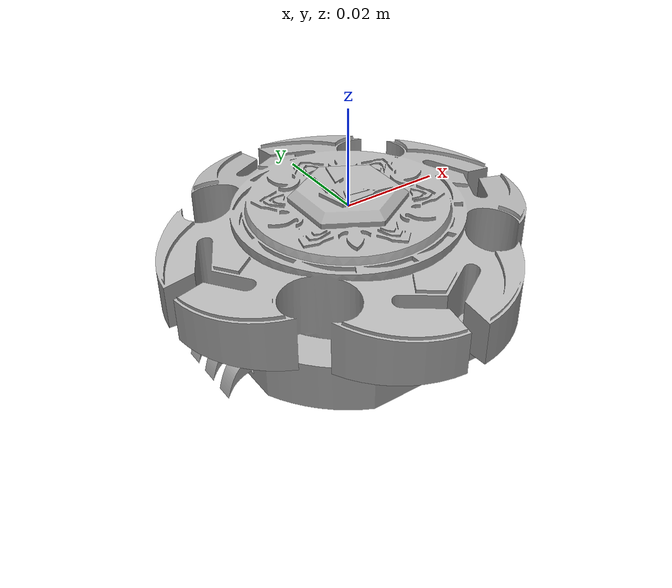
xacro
<?xml version="1.0" ?>
<robot name="lion_claw" xmlns:xacro="http://www.ros.org/wiki/xacro">

<xacro:include filename="$(find lion_claw_description)/urdf/materials.xacro" />
<xacro:include filename="$(find lion_claw_description)/urdf/lion_claw.trans" />
<xacro:include filename="$(find lion_claw_description)/urdf/lion_claw.gazebo" />
<link name="base_link">
  <inertial>
    <origin xyz="-3.5038751038095783e-15 1.138759408738113e-13 -0.02184941545044436" rpy="0 0 0"/>
    <mass value="0.18656872987375012"/>
    <inertia ixx="5e-05" iyy="3.7e-05" izz="7.3e-05" ixy="0.0" iyz="0.0" ixz="-0.0"/>
  </inertial>
  <visual>
    <origin xyz="0 0 0" rpy="0 0 0"/>
    <geometry>
      <mesh filename="package://lion_claw_description/meshes/base_link.stl" scale="0.001 0.001 0.001"/>
    </geometry>
    <material name="silver"/>
  </visual>
  <collision>
    <origin xyz="0 0 0" rpy="0 0 0"/>
    <geometry>
      <mesh filename="package://lion_claw_description/meshes/base_link.stl" scale="0.001 0.001 0.001"/>
    </geometry>
  </collision>
</link>

<link name="face_bolt_1">
  <inertial>
    <origin xyz="-2.3864795246743213e-05 3.1026942694426355e-06 0.019193370676955403" rpy="0 0 0"/>
    <mass value="0.02499449229797251"/>
    <inertia ixx="3e-06" iyy="3e-06" izz="1e-06" ixy="0.0" iyz="-0.0" ixz="0.0"/>
  </inertial>
  <visual>
    <origin xyz="-0.0 -0.0 0.028346" rpy="0 0 0"/>
    <geometry>
      <mesh filename="package://lion_claw_description/meshes/face_bolt_1.stl" scale="0.001 0.001 0.001"/>
    </geometry>
    <material name="silver"/>
  </visual>
  <collision>
    <origin xyz="-0.0 -0.0 0.028346" rpy="0 0 0"/>
    <geometry>
      <mesh filename="package://lion_claw_description/meshes/face_bolt_1.stl" scale="0.001 0.001 0.001"/>
    </geometry>
  </collision>
</link>

<link name="fusion_wheel_1">
  <inertial>
    <origin xyz="1.1768987917548657e-09 -7.615916786107846e-12 -0.008721304375586759" rpy="0 0 0"/>
    <mass value="0.3199627508858946"/>
    <inertia ixx="9.2e-05" iyy="9.2e-05" izz="0.000173" ixy="0.0" iyz="0.0" ixz="-0.0"/>
  </inertial>
  <visual>
    <origin xyz="-0.0 -0.0 -0.001484" rpy="0 0 0"/>
    <geometry>
      <mesh filename="package://lion_claw_description/meshes/fusion_wheel_1.stl" scale="0.001 0.001 0.001"/>
    </geometry>
    <material name="silver"/>
  </visual>
  <collision>
    <origin xyz="-0.0 -0.0 -0.001484" rpy="0 0 0"/>
    <geometry>
      <mesh filename="package://lion_claw_description/meshes/fusion_wheel_1.stl" scale="0.001 0.001 0.001"/>
    </geometry>
  </collision>
</link>

<link name="claw_1_1">
  <inertial>
    <origin xyz="-0.009406159990673228 -1.8952289329747e-18 -0.00042267152208199515" rpy="0 0 0"/>
    <mass value="0.009197042733648284"/>
    <inertia ixx="0.0" iyy="1e-06" izz="1e-06" ixy="-0.0" iyz="0.0" ixz="-0.0"/>
  </inertial>
  <visual>
    <origin xyz="0.007 0.0 0.01915" rpy="0 0 0"/>
    <geometry>
      <mesh filename="package://lion_claw_description/meshes/claw_1_1.stl" scale="0.001 0.001 0.001"/>
    </geometry>
    <material name="silver"/>
  </visual>
  <collision>
    <origin xyz="0.007 0.0 0.01915" rpy="0 0 0"/>
    <geometry>
      <mesh filename="package://lion_claw_description/meshes/claw_1_1.stl" scale="0.001 0.001 0.001"/>
    </geometry>
  </collision>
</link>

<link name="claw_2_1">
  <inertial>
    <origin xyz="0.009406159990673228 -1.8952289329747e-18 -0.00042267152208199515" rpy="0 0 0"/>
    <mass value="0.009197042733648284"/>
    <inertia ixx="0.0" iyy="1e-06" izz="1e-06" ixy="-0.0" iyz="0.0" ixz="0.0"/>
  </inertial>
  <visual>
    <origin xyz="-0.007 0.0 0.01915" rpy="0 0 0"/>
    <geometry>
      <mesh filename="package://lion_claw_description/meshes/claw_2_1.stl" scale="0.001 0.001 0.001"/>
    </geometry>
    <material name="silver"/>
  </visual>
  <collision>
    <origin xyz="-0.007 0.0 0.01915" rpy="0 0 0"/>
    <geometry>
      <mesh filename="package://lion_claw_description/meshes/claw_2_1.stl" scale="0.001 0.001 0.001"/>
    </geometry>
  </collision>
</link>

<joint name="Rigid10" type="fixed">
  <origin xyz="0.0 0.0 -0.028346" rpy="0 0 0"/>
  <parent link="base_link"/>
  <child link="face_bolt_1"/>
</joint>

<joint name="Rigid11" type="fixed">
  <origin xyz="0.0 0.0 0.02983" rpy="0 0 0"/>
  <parent link="face_bolt_1"/>
  <child link="fusion_wheel_1"/>
</joint>

<joint name="Slider15" type="prismatic">
  <origin xyz="-0.007 0.0 -0.01915" rpy="0 0 0"/>
  <parent link="base_link"/>
  <child link="claw_1_1"/>
  <axis xyz="-1.0 -0.0 0.0"/>
  <limit upper="0.015" lower="0.0" effort="100" velocity="100"/>
</joint>

<joint name="Slider16" type="prismatic">
  <origin xyz="0.007 0.0 -0.01915" rpy="0 0 0"/>
  <parent link="base_link"/>
  <child link="claw_2_1"/>
  <axis xyz="1.0 0.0 0.0"/>
  <limit upper="0.015" lower="0.0" effort="100" velocity="100"/>
</joint>

</robot>

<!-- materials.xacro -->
<robot name="lion_claw" xmlns:xacro="http://www.ros.org/wiki/xacro" >

<material name="silver">
  <color rgba="0.700 0.700 0.700 1.000"/>
</material>

</robot>

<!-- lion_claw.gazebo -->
<robot name="lion_claw" xmlns:xacro="http://www.ros.org/wiki/xacro" >

<xacro:property name="body_color" value="Gazebo/Silver" />

<gazebo>
  <plugin name="control" filename="libgazebo_ros_control.so"/>
</gazebo>
<gazebo reference="base_link">
  <material>${body_color}</material>
  <mu1>0.2</mu1>
  <mu2>0.2</mu2>
  <selfCollide>true</selfCollide>
  <gravity>true</gravity>
</gazebo>

<gazebo reference="face_bolt_1">
  <material>${body_color}</material>
  <mu1>0.2</mu1>
  <mu2>0.2</mu2>
  <selfCollide>true</selfCollide>
</gazebo>

<gazebo reference="fusion_wheel_1">
  <material>${body_color}</material>
  <mu1>0.2</mu1>
  <mu2>0.2</mu2>
  <selfCollide>true</selfCollide>
</gazebo>

<gazebo reference="claw_1_1">
  <material>${body_color}</material>
  <mu1>0.2</mu1>
  <mu2>0.2</mu2>
  <selfCollide>true</selfCollide>
</gazebo>

<gazebo reference="claw_2_1">
  <material>${body_color}</material>
  <mu1>0.2</mu1>
  <mu2>0.2</mu2>
  <selfCollide>true</selfCollide>
</gazebo>

</robot>
